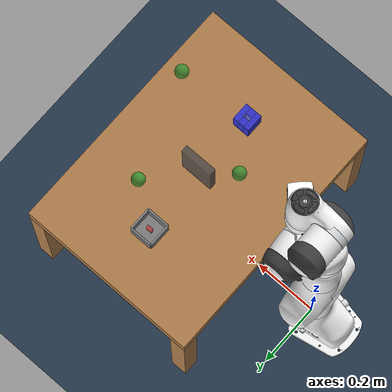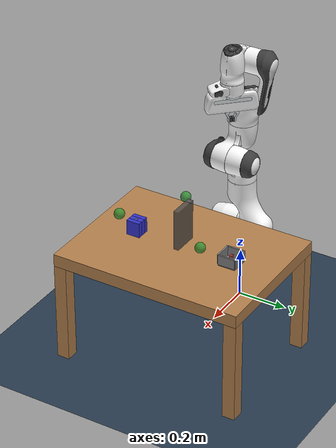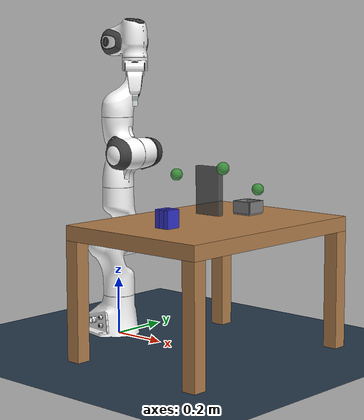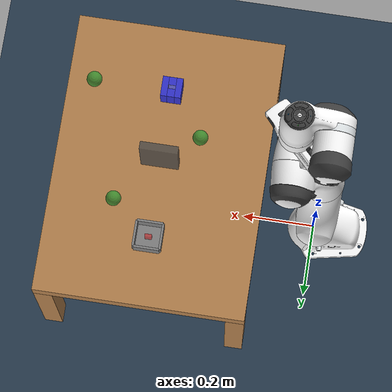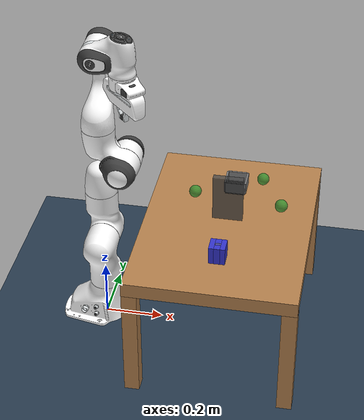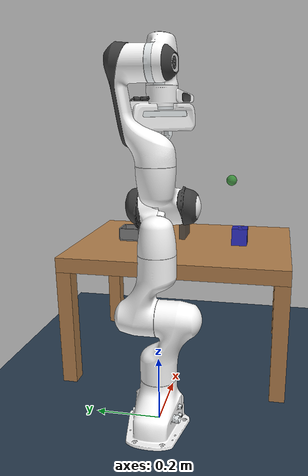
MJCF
<mujoco model="usb_scene">
    <statistic center="0.565 0 0.525" extent="1.5" meansize="0.05"/>

    <option impratio="10"/>

    <visual>
        <headlight diffuse="0.6 0.6 0.6" ambient="0.1 0.1 0.1" specular="0 0 0"/>
        <global azimuth="120" elevation="-20"/>
        <map znear="0.01"/>
    </visual>

    <asset>
        <texture name="grid_texture" type="2d" builtin="checker" rgb1=".2 .3 .4" rgb2=".1 0.15 0.2" width="512" height="512"
            mark="cross" markrgb=".8 .8 .8"/>
        <material name="floor_material" texture="grid_texture" texrepeat="2 2" texuniform="true"/>
        <material name="table_material" rgba="0.7 0.5 0.3 1"/>
        <material name="usb_plug_body_material" rgba="0.2 0.2 0.8 1"/>
        <material name="usb_plug_hole_material" rgba="0.8 0.8 0.8 0.3"/>
        <material name="usb_port_wall_material" rgba="0.5 0.5 0.5 1"/>
        <material name="usb_port_peg_material" rgba="0.8 0.2 0.2 0.7"/>
        <material name="obstacle_material" rgba="0.3 0.3 0.3 0.8"/>
        <material name="sphere_material" rgba="0.2 0.6 0.2 0.8"/>
    </asset>

    <include file="panda.xml"/>

    <worldbody>
        <light pos="0 0 2.0" dir="0 0 -1" directional="true"/>
        <geom name="floor" size="2 2 0.05" type="plane" material="floor_material"/>

        <body name="table" pos="0.43 0 0">
            <geom name="tabletop" type="box" size="0.28 0.38 0.025" pos="0 0 0.425" material="table_material"/>
            <geom name="leg1"    type="box" size="0.025 0.025 0.20" pos=" 0.255  0.355 0.20" material="table_material"/>
            <geom name="leg2"    type="box" size="0.025 0.025 0.20" pos=" 0.255 -0.355 0.20" material="table_material"/>
            <geom name="leg3"    type="box" size="0.025 0.025 0.20" pos="-0.255  0.355 0.20" material="table_material"/>
            <geom name="leg4"    type="box" size="0.025 0.025 0.20" pos="-0.255 -0.355 0.20" material="table_material"/>
        </body>

        <body name="usb_plug" pos="0.43 -0.20 0.48">
            <joint name="usb_joint" type="free" damping="0.1"/>
            <geom name="plug_coll_px" type="box" size="0.0085 0.027 0.03" pos="0.0185 0 0" material="usb_plug_body_material" density="10"/>
            <geom name="plug_coll_nx" type="box" size="0.0085 0.027 0.03" pos="-0.0185 0 0" material="usb_plug_body_material" density="10"/>
            <geom name="plug_coll_py" type="box" size="0.01 0.011 0.03" pos="0 0.016 0" material="usb_plug_body_material" density="10"/>
            <geom name="plug_coll_ny" type="box" size="0.01 0.011 0.03" pos="0 -0.016 0" material="usb_plug_body_material" density="10"/>
            <geom name="plug_hole_visual"
                  type="box"
                  size="0.01 0.005 0.03"
                  pos="0 0 0"
                  material="usb_plug_hole_material"
                  contype="0"
                  conaffinity="0"/>
        </body>

        <body name="usb_port" pos="0.43 0.20 0.486">
            <geom name="port_bottom"
                  type="box"
                  size="0.0345 0.0345 0.003"
                  pos="0 0 -0.033"
                  material="usb_port_wall_material"/>
            <geom name="port_wall_neg_x"
                  type="box"
                  size="0.003  0.0345 0.020"
                  pos="-0.035  0 -0.010" material="usb_port_wall_material"/>
            <geom name="port_wall_pos_x"
                  type="box"
                  size="0.003  0.0345 0.020"
                  pos=" 0.035  0 -0.010" material="usb_port_wall_material"/>
            <geom name="port_wall_neg_y"
                  type="box"
                  size="0.0345 0.003  0.020"
                  pos="0 -0.035 -0.010" material="usb_port_wall_material"/>
            <geom name="port_wall_pos_y"
                  type="box"
                  size="0.0345 0.003  0.020"
                  pos="0  0.035 -0.010" material="usb_port_wall_material"/>

            <geom name="port_peg_colliding"
                  type="box"
                  size="0.009 0.004 0.015"
                  pos="0 0 -0.015"
                  material="usb_port_peg_material"/>
        </body>

        <body name="obstacle" pos="0.43 0 0.55">
            <geom name="obstacle_wall"
                  type="box"
                  size="0.05 0.01 0.08"
                  material="obstacle_material"
                  contype="65535" conaffinity="65535"/>
        </body>

        <body name="sphere1" pos="0.53 0.13 0.55">
            <geom name="sphere1_geom"
                  type="sphere"
                  size="0.02"
                  material="sphere_material"
                  contype="65535" conaffinity="65535"/>
        </body>

        <body name="sphere2" pos="0.62 -0.15 0.65">
            <geom name="sphere2_geom"
                  type="sphere"
                  size="0.02"
                  material="sphere_material"
                  contype="65535" conaffinity="65535"/>
        </body>

        <body name="sphere3" pos="0.33 -0.05 0.6">
            <geom name="sphere3_geom"
                  type="sphere"
                  size="0.02"
                  material="sphere_material"
                  contype="65535" conaffinity="65535"/>
        </body>
    </worldbody>

    <keyframe>
        <key name="home"
             qpos="0 0 0 -1.5708 0 1.5708 0.782 0.04 0.04 0.43 -0.20 0.455 1 0 0 0"
             ctrl="0 0 0 -1.5708 0 1.5708 0.782 255"/>
    </keyframe>
</mujoco>

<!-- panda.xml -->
<mujoco model="panda">
  <compiler angle="radian" meshdir="assets" autolimits="true"/>

  <option integrator="implicitfast"/>

  <default>
    <default class="panda">
      <material specular="0.5" shininess="0.25"/>
      <joint armature="0.1" damping="1" axis="0 0 1" range="-2.8973 2.8973"/>
      <general dyntype="none" biastype="affine" ctrlrange="-2.8973 2.8973" forcerange="-87 87"/>
      <default class="finger">
        <joint axis="0 1 0" type="slide" range="0 0.04"/>
      </default>

      <default class="visual">
        <geom type="mesh" contype="0" conaffinity="0" group="2"/>
      </default>
      <default class="collision">
        <geom type="mesh" group="3"/>
        <default class="fingertip_pad_collision_1">
          <geom type="box" size="0.0085 0.004 0.0085" pos="0 0.0055 0.0445"/>
        </default>
        <default class="fingertip_pad_collision_2">
          <geom type="box" size="0.003 0.002 0.003" pos="0.0055 0.002 0.05"/>
        </default>
        <default class="fingertip_pad_collision_3">
          <geom type="box" size="0.003 0.002 0.003" pos="-0.0055 0.002 0.05"/>
        </default>
        <default class="fingertip_pad_collision_4">
          <geom type="box" size="0.003 0.002 0.0035" pos="0.0055 0.002 0.0395"/>
        </default>
        <default class="fingertip_pad_collision_5">
          <geom type="box" size="0.003 0.002 0.0035" pos="-0.0055 0.002 0.0395"/>
        </default>
      </default>
    </default>
  </default>

  <asset>
    <material class="panda" name="white" rgba="1 1 1 1"/>
    <material class="panda" name="off_white" rgba="0.901961 0.921569 0.929412 1"/>
    <material class="panda" name="black" rgba="0.25 0.25 0.25 1"/>
    <material class="panda" name="green" rgba="0 1 0 1"/>
    <material class="panda" name="light_blue" rgba="0.039216 0.541176 0.780392 1"/>

    <mesh name="link0_c" file="link0.stl"/>
    <mesh name="link1_c" file="link1.stl"/>
    <mesh name="link2_c" file="link2.stl"/>
    <mesh name="link3_c" file="link3.stl"/>
    <mesh name="link4_c" file="link4.stl"/>
    <mesh name="link5_c0" file="link5_collision_0.obj"/>
    <mesh name="link5_c1" file="link5_collision_1.obj"/>
    <mesh name="link5_c2" file="link5_collision_2.obj"/>
    <mesh name="link6_c" file="link6.stl"/>
    <mesh name="link7_c" file="link7.stl"/>
    <mesh name="hand_c" file="hand.stl"/>

    <mesh file="link0_0.obj"/>
    <mesh file="link0_1.obj"/>
    <mesh file="link0_2.obj"/>
    <mesh file="link0_3.obj"/>
    <mesh file="link0_4.obj"/>
    <mesh file="link0_5.obj"/>
    <mesh file="link0_7.obj"/>
    <mesh file="link0_8.obj"/>
    <mesh file="link0_9.obj"/>
    <mesh file="link0_10.obj"/>
    <mesh file="link0_11.obj"/>
    <mesh file="link1.obj"/>
    <mesh file="link2.obj"/>
    <mesh file="link3_0.obj"/>
    <mesh file="link3_1.obj"/>
    <mesh file="link3_2.obj"/>
    <mesh file="link3_3.obj"/>
    <mesh file="link4_0.obj"/>
    <mesh file="link4_1.obj"/>
    <mesh file="link4_2.obj"/>
    <mesh file="link4_3.obj"/>
    <mesh file="link5_0.obj"/>
    <mesh file="link5_1.obj"/>
    <mesh file="link5_2.obj"/>
    <mesh file="link6_0.obj"/>
    <mesh file="link6_1.obj"/>
    <mesh file="link6_2.obj"/>
    <mesh file="link6_3.obj"/>
    <mesh file="link6_4.obj"/>
    <mesh file="link6_5.obj"/>
    <mesh file="link6_6.obj"/>
    <mesh file="link6_7.obj"/>
    <mesh file="link6_8.obj"/>
    <mesh file="link6_9.obj"/>
    <mesh file="link6_10.obj"/>
    <mesh file="link6_11.obj"/>
    <mesh file="link6_12.obj"/>
    <mesh file="link6_13.obj"/>
    <mesh file="link6_14.obj"/>
    <mesh file="link6_15.obj"/>
    <mesh file="link6_16.obj"/>
    <mesh file="link7_0.obj"/>
    <mesh file="link7_1.obj"/>
    <mesh file="link7_2.obj"/>
    <mesh file="link7_3.obj"/>
    <mesh file="link7_4.obj"/>
    <mesh file="link7_5.obj"/>
    <mesh file="link7_6.obj"/>
    <mesh file="link7_7.obj"/>
    <mesh file="hand_0.obj"/>
    <mesh file="hand_1.obj"/>
    <mesh file="hand_2.obj"/>
    <mesh file="hand_3.obj"/>
    <mesh file="hand_4.obj"/>
    <mesh file="finger_0.obj"/>
    <mesh file="finger_1.obj"/>
  </asset>

  <worldbody>
    <light name="top" pos="0 0 2" mode="trackcom"/>
    <body name="link0" childclass="panda">
      <inertial mass="0.629769" pos="-0.041018 -0.00014 0.049974"
        fullinertia="0.00315 0.00388 0.004285 8.2904e-7 0.00015 8.2299e-6"/>
      <geom mesh="link0_0" material="off_white" class="visual"/>
      <geom mesh="link0_1" material="black" class="visual"/>
      <geom mesh="link0_2" material="off_white" class="visual"/>
      <geom mesh="link0_3" material="black" class="visual"/>
      <geom mesh="link0_4" material="off_white" class="visual"/>
      <geom mesh="link0_5" material="black" class="visual"/>
      <geom mesh="link0_7" material="white" class="visual"/>
      <geom mesh="link0_8" material="white" class="visual"/>
      <geom mesh="link0_9" material="black" class="visual"/>
      <geom mesh="link0_10" material="off_white" class="visual"/>
      <geom mesh="link0_11" material="white" class="visual"/>
      <geom mesh="link0_c" class="collision"/>
      <body name="link1" pos="0 0 0.333">
        <inertial mass="4.970684" pos="0.003875 0.002081 -0.04762"
          fullinertia="0.70337 0.70661 0.0091170 -0.00013900 0.0067720 0.019169"/>
        <joint name="joint1"/>
        <geom material="white" mesh="link1" class="visual"/>
        <geom mesh="link1_c" class="collision"/>
        <body name="link2" quat="1 -1 0 0">
          <inertial mass="0.646926" pos="-0.003141 -0.02872 0.003495"
            fullinertia="0.0079620 2.8110e-2 2.5995e-2 -3.925e-3 1.0254e-2 7.04e-4"/>
          <joint name="joint2" range="-1.7628 1.7628"/>
          <geom material="white" mesh="link2" class="visual"/>
          <geom mesh="link2_c" class="collision"/>
          <body name="link3" pos="0 -0.316 0" quat="1 1 0 0">
            <joint name="joint3"/>
            <inertial mass="3.228604" pos="2.7518e-2 3.9252e-2 -6.6502e-2"
              fullinertia="3.7242e-2 3.6155e-2 1.083e-2 -4.761e-3 -1.1396e-2 -1.2805e-2"/>
            <geom mesh="link3_0" material="white" class="visual"/>
            <geom mesh="link3_1" material="white" class="visual"/>
            <geom mesh="link3_2" material="white" class="visual"/>
            <geom mesh="link3_3" material="black" class="visual"/>
            <geom mesh="link3_c" class="collision"/>
            <body name="link4" pos="0.0825 0 0" quat="1 1 0 0">
              <inertial mass="3.587895" pos="-5.317e-2 1.04419e-1 2.7454e-2"
                fullinertia="2.5853e-2 1.9552e-2 2.8323e-2 7.796e-3 -1.332e-3 8.641e-3"/>
              <joint name="joint4" range="-3.0718 -0.0698"/>
              <geom mesh="link4_0" material="white" class="visual"/>
              <geom mesh="link4_1" material="white" class="visual"/>
              <geom mesh="link4_2" material="black" class="visual"/>
              <geom mesh="link4_3" material="white" class="visual"/>
              <geom mesh="link4_c" class="collision"/>
              <body name="link5" pos="-0.0825 0.384 0" quat="1 -1 0 0">
                <inertial mass="1.225946" pos="-1.1953e-2 4.1065e-2 -3.8437e-2"
                  fullinertia="3.5549e-2 2.9474e-2 8.627e-3 -2.117e-3 -4.037e-3 2.29e-4"/>
                <joint name="joint5"/>
                <geom mesh="link5_0" material="black" class="visual"/>
                <geom mesh="link5_1" material="white" class="visual"/>
                <geom mesh="link5_2" material="white" class="visual"/>
                <geom mesh="link5_c0" class="collision"/>
                <geom mesh="link5_c1" class="collision"/>
                <geom mesh="link5_c2" class="collision"/>
                <body name="link6" quat="1 1 0 0">
                  <inertial mass="1.666555" pos="6.0149e-2 -1.4117e-2 -1.0517e-2"
                    fullinertia="1.964e-3 4.354e-3 5.433e-3 1.09e-4 -1.158e-3 3.41e-4"/>
                  <joint name="joint6" range="-0.0175 3.7525"/>
                  <geom mesh="link6_0" material="off_white" class="visual"/>
                  <geom mesh="link6_1" material="white" class="visual"/>
                  <geom mesh="link6_2" material="black" class="visual"/>
                  <geom mesh="link6_3" material="white" class="visual"/>
                  <geom mesh="link6_4" material="white" class="visual"/>
                  <geom mesh="link6_5" material="white" class="visual"/>
                  <geom mesh="link6_6" material="white" class="visual"/>
                  <geom mesh="link6_7" material="light_blue" class="visual"/>
                  <geom mesh="link6_8" material="light_blue" class="visual"/>
                  <geom mesh="link6_9" material="black" class="visual"/>
                  <geom mesh="link6_10" material="black" class="visual"/>
                  <geom mesh="link6_11" material="white" class="visual"/>
                  <geom mesh="link6_12" material="green" class="visual"/>
                  <geom mesh="link6_13" material="white" class="visual"/>
                  <geom mesh="link6_14" material="black" class="visual"/>
                  <geom mesh="link6_15" material="black" class="visual"/>
                  <geom mesh="link6_16" material="white" class="visual"/>
                  <geom mesh="link6_c" class="collision"/>
                  <body name="link7" pos="0.088 0 0" quat="1 1 0 0">
                    <inertial mass="7.35522e-01" pos="1.0517e-2 -4.252e-3 6.1597e-2"
                      fullinertia="1.2516e-2 1.0027e-2 4.815e-3 -4.28e-4 -1.196e-3 -7.41e-4"/>
                    <joint name="joint7"/>
                    <geom mesh="link7_0" material="white" class="visual"/>
                    <geom mesh="link7_1" material="black" class="visual"/>
                    <geom mesh="link7_2" material="black" class="visual"/>
                    <geom mesh="link7_3" material="black" class="visual"/>
                    <geom mesh="link7_4" material="black" class="visual"/>
                    <geom mesh="link7_5" material="black" class="visual"/>
                    <geom mesh="link7_6" material="black" class="visual"/>
                    <geom mesh="link7_7" material="white" class="visual"/>
                    <geom mesh="link7_c" class="collision"/>
                    <body name="hand" pos="0 0 0.107" quat="0.9238795 0 0 -0.3826834">
                      <inertial mass="0.73" pos="-0.01 0 0.03" diaginertia="0.001 0.0025 0.0017"/>
                      <geom mesh="hand_0" material="off_white" class="visual"/>
                      <geom mesh="hand_1" material="black" class="visual"/>
                      <geom mesh="hand_2" material="black" class="visual"/>
                      <geom mesh="hand_3" material="white" class="visual"/>
                      <geom mesh="hand_4" material="off_white" class="visual"/>
                      <geom mesh="hand_c" class="collision"/>
                      <geom name="pre_grasp_volume" type="box" size="0.05 0.05 0.075" pos="0 0 0.08"
                          rgba="0 0 0 0" class="collision" contype="2" conaffinity="4"/>
                      <body name="left_finger" pos="0 0 0.0584">
                        <inertial mass="0.015" pos="0 0 0" diaginertia="2.375e-6 2.375e-6 7.5e-7"/>
                        <joint name="finger_joint1" class="finger"/>
                        <geom mesh="finger_0" material="off_white" class="visual"/>
                        <geom mesh="finger_1" material="black" class="visual"/>
                        <geom mesh="finger_0" class="collision"/>
                        <geom class="fingertip_pad_collision_1"/>
                        <geom class="fingertip_pad_collision_2"/>
                        <geom class="fingertip_pad_collision_3"/>
                        <geom class="fingertip_pad_collision_4"/>
                        <geom class="fingertip_pad_collision_5"/>
                      </body>
                      <body name="right_finger" pos="0 0 0.0584" quat="0 0 0 1">
                        <inertial mass="0.015" pos="0 0 0" diaginertia="2.375e-6 2.375e-6 7.5e-7"/>
                        <joint name="finger_joint2" class="finger"/>
                        <geom mesh="finger_0" material="off_white" class="visual"/>
                        <geom mesh="finger_1" material="black" class="visual"/>
                        <geom mesh="finger_0" class="collision"/>
                        <geom class="fingertip_pad_collision_1"/>
                        <geom class="fingertip_pad_collision_2"/>
                        <geom class="fingertip_pad_collision_3"/>
                        <geom class="fingertip_pad_collision_4"/>
                        <geom class="fingertip_pad_collision_5"/>
                      </body>
                    </body>
                  </body>
                </body>
              </body>
            </body>
          </body>
        </body>
      </body>
    </body>
  </worldbody>

  <tendon>
    <fixed name="split">
      <joint joint="finger_joint1" coef="0.5"/>
      <joint joint="finger_joint2" coef="0.5"/>
    </fixed>
  </tendon>

  <equality>
    <joint joint1="finger_joint1" joint2="finger_joint2" solimp="0.95 0.99 0.001" solref="0.005 1"/>
  </equality>

  <actuator>
    <general class="panda" name="actuator1" joint="joint1" gainprm="4500" biasprm="0 -4500 -450"/>
    <general class="panda" name="actuator2" joint="joint2" gainprm="4500" biasprm="0 -4500 -450"
      ctrlrange="-1.7628 1.7628"/>
    <general class="panda" name="actuator3" joint="joint3" gainprm="3500" biasprm="0 -3500 -350"/>
    <general class="panda" name="actuator4" joint="joint4" gainprm="3500" biasprm="0 -3500 -350"
      ctrlrange="-3.0718 -0.0698"/>
    <general class="panda" name="actuator5" joint="joint5" gainprm="2000" biasprm="0 -2000 -200" forcerange="-12 12"/>
    <general class="panda" name="actuator6" joint="joint6" gainprm="2000" biasprm="0 -2000 -200" forcerange="-12 12"
      ctrlrange="-0.0175 3.7525"/>
    <general class="panda" name="actuator7" joint="joint7" gainprm="2000" biasprm="0 -2000 -200" forcerange="-12 12"/>
    <general class="panda" name="actuator8" tendon="split" forcerange="-100 100" ctrlrange="0 255"
      gainprm="0.01568627451 0 0" biasprm="0 -100 -10"/>
  </actuator>

  </mujoco>
